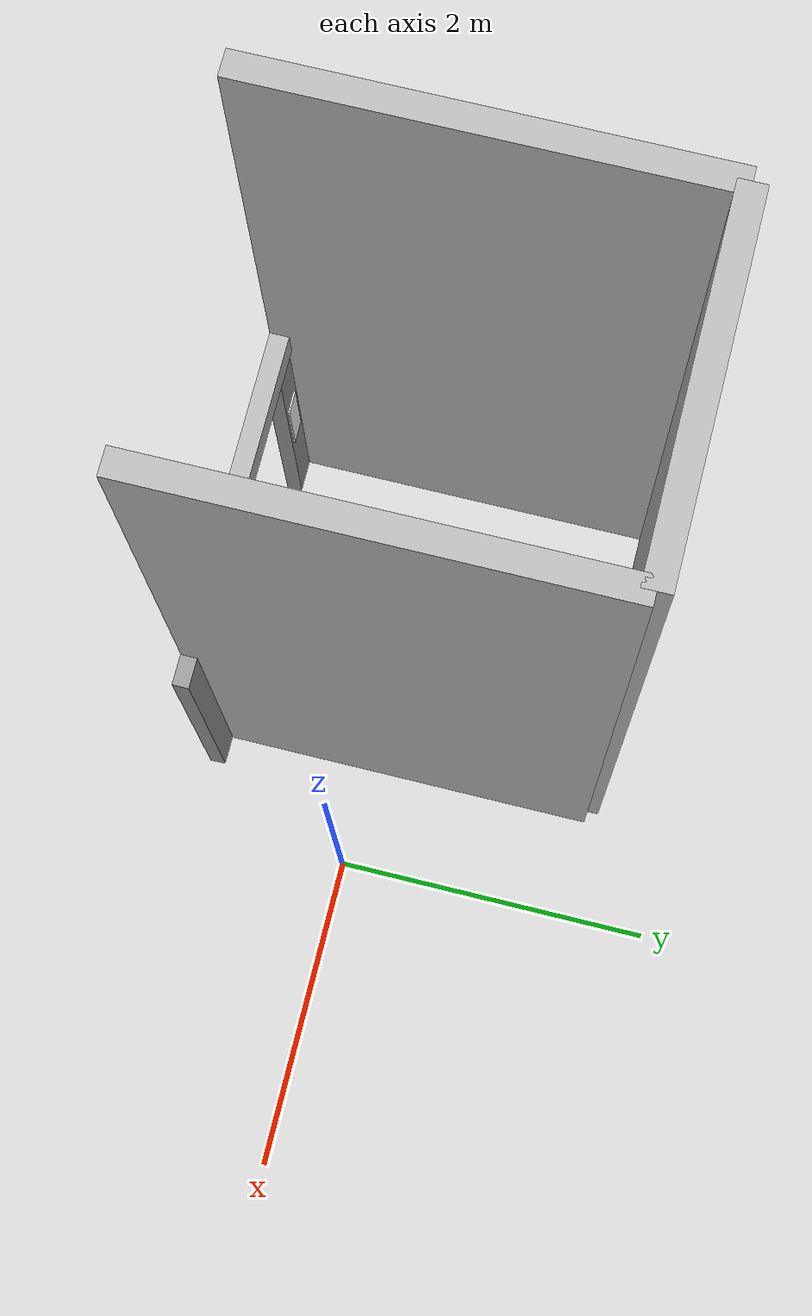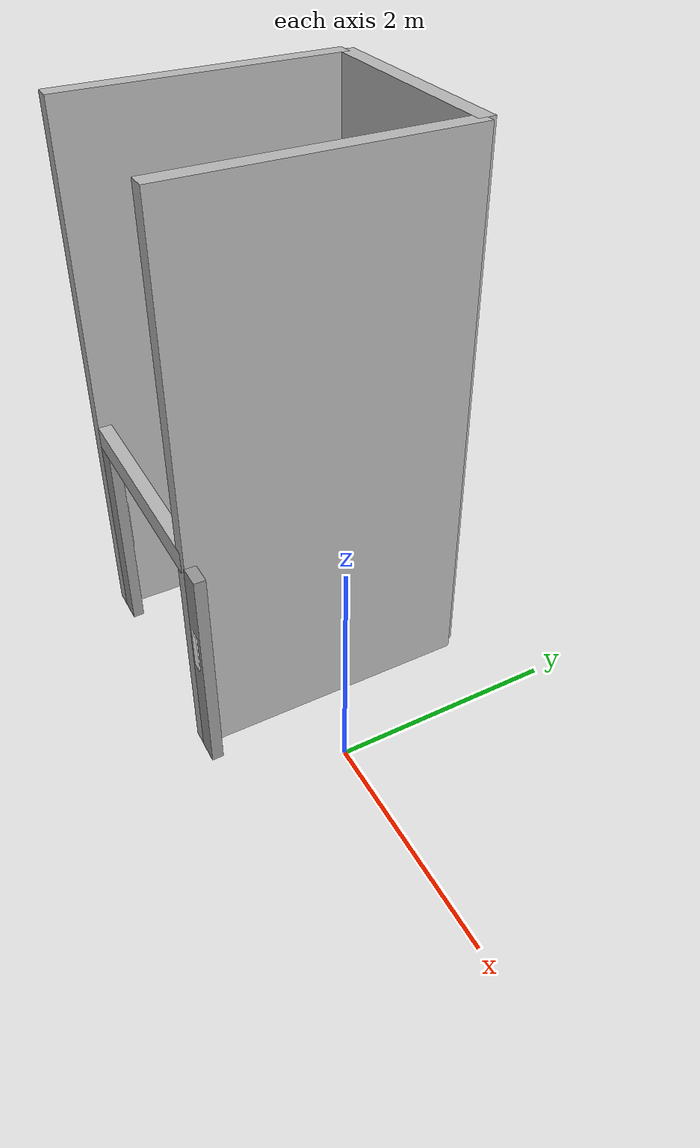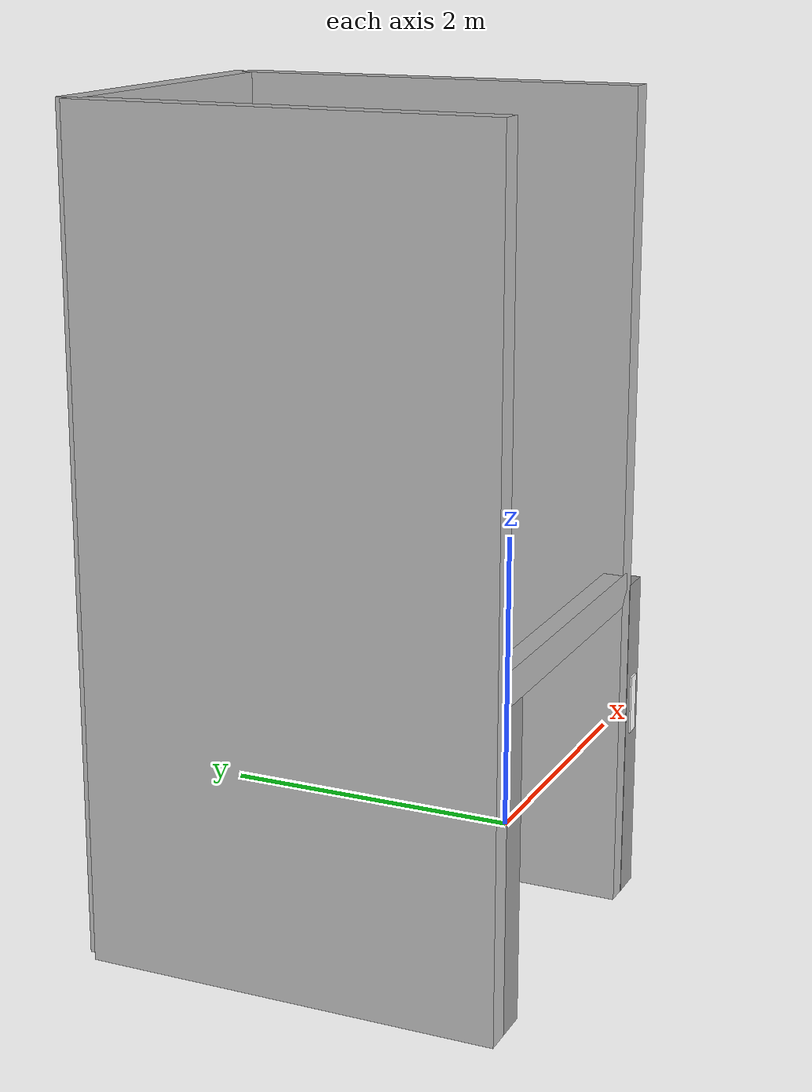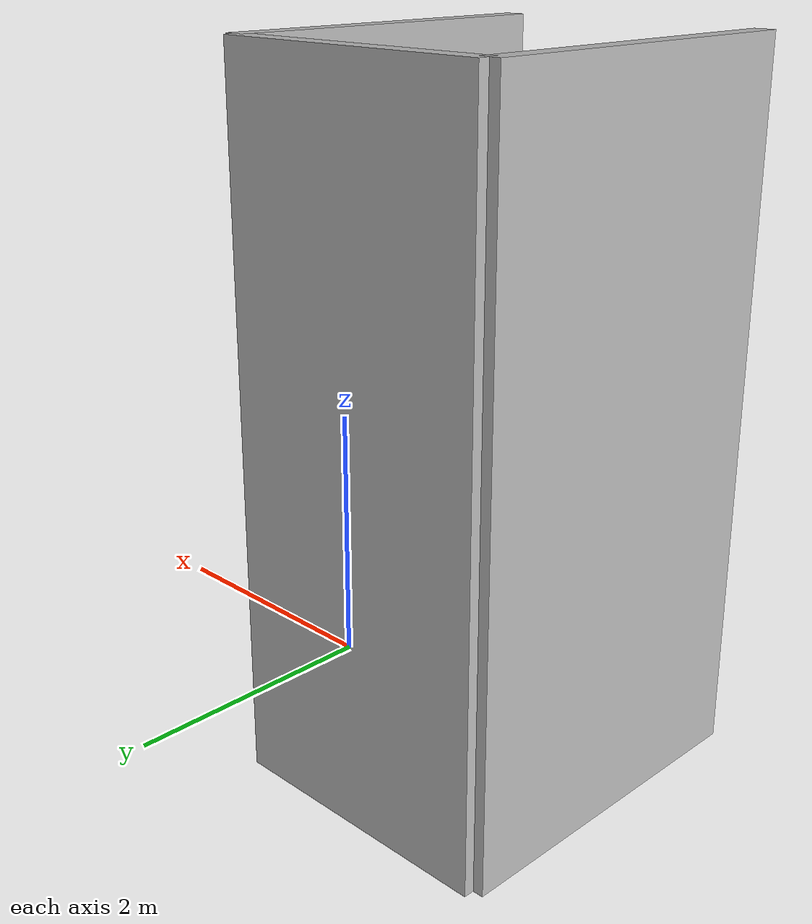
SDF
<?xml version='1.0'?>
<sdf version='1.6'>
  <model name='elevator_shaft'>
    <link name='elevator_shaft'>
      <pose frame=''>-1.72355 0.224232 0 0 0 -1.5708</pose>
      <inertial>
        <mass>1</mass>
        <pose frame=''>0 0 0 0 -0 0</pose>
        <inertia>
          <ixx>1</ixx>
          <ixy>0</ixy>
          <ixz>0</ixz>
          <iyy>1</iyy>
          <iyz>0</iyz>
          <izz>1</izz>
        </inertia>
      </inertial>
      <self_collide>0</self_collide>
      <kinematic>0</kinematic>
      <visual name='shaft_wall3_visual'>
        <pose frame=''>-1.25 0 2.4774 0 -0 0</pose>
        <geometry>
          <box>
            <size>0.15 2 4.95479</size>
          </box>
        </geometry>
        <material>
          <shader type='pixel'>
            <normal_map>__default__</normal_map>
          </shader>
        </material>
        <cast_shadows>1</cast_shadows>
        <transparency>0</transparency>
      </visual>
      <visual name='shaft_wall2_visual'>
        <pose frame=''>0 -1 2.4774 0 -0 0</pose>
        <geometry>
          <box>
            <size>2.5 0.15 4.95479</size>
          </box>
        </geometry>
        <material>
          <shader type='pixel'>
            <normal_map>__default__</normal_map>
          </shader>
        </material>
        <cast_shadows>1</cast_shadows>
        <transparency>0</transparency>
      </visual>
      <visual name='shaft_wall1_visual'>
        <pose frame=''>0 1 2.4774 0 -0 0</pose>
        <geometry>
          <box>
            <size>2.5 0.15 4.95479</size>
          </box>
        </geometry>
        <material>
          <shader type='pixel'>
            <normal_map>__default__</normal_map>
          </shader>
        </material>
        <cast_shadows>1</cast_shadows>
        <transparency>0</transparency>
      </visual>
      <visual name='floor1_visual'>
        <pose frame=''>1.19 0 2 0 -0 0</pose>
        <geometry>
          <box>
            <size>0.12 2 0.2</size>
          </box>
        </geometry>
        <material>
          <shader type='pixel'>
            <normal_map>__default__</normal_map>
          </shader>
        </material>
        <cast_shadows>1</cast_shadows>
        <transparency>0</transparency>
      </visual>
      <collision name='floor1_collision'>
        <laser_retro>0</laser_retro>
        <max_contacts>10</max_contacts>
        <pose frame=''>1.19 0 2 0 -0 0</pose>
        <geometry>
          <box>
            <size>0.12 2 0.2</size>
          </box>
        </geometry>
        <surface>
          <friction>
            <ode>
              <mu>1</mu>
              <mu2>1</mu2>
              <fdir1>0 0 0</fdir1>
              <slip1>0</slip1>
              <slip2>0</slip2>
            </ode>
            <torsional>
              <coefficient>1</coefficient>
              <patch_radius>0</patch_radius>
              <surface_radius>0</surface_radius>
              <use_patch_radius>1</use_patch_radius>
              <ode>
                <slip>0</slip>
              </ode>
            </torsional>
          </friction>
          <bounce>
            <restitution_coefficient>0</restitution_coefficient>
            <threshold>1e+06</threshold>
          </bounce>
          <contact>
            <collide_without_contact>0</collide_without_contact>
            <collide_without_contact_bitmask>1</collide_without_contact_bitmask>
            <collide_bitmask>1</collide_bitmask>
            <ode>
              <soft_cfm>0</soft_cfm>
              <soft_erp>0.2</soft_erp>
              <kp>1e+13</kp>
              <kd>1</kd>
              <max_vel>0.01</max_vel>
              <min_depth>0</min_depth>
            </ode>
            <bullet>
              <split_impulse>1</split_impulse>
              <split_impulse_penetration_threshold>-0.01</split_impulse_penetration_threshold>
              <soft_cfm>0</soft_cfm>
              <soft_erp>0.2</soft_erp>
              <kp>1e+13</kp>
              <kd>1</kd>
            </bullet>
          </contact>
        </surface>
      </collision>
      <collision name='shaft_wall3_collision'>
        <laser_retro>0</laser_retro>
        <max_contacts>10</max_contacts>
        <pose frame=''>-1.25 0 2.4774 0 -0 0</pose>
        <geometry>
          <box>
            <size>0.15 2 4.95479</size>
          </box>
        </geometry>
        <surface>
          <friction>
            <ode>
              <mu>1</mu>
              <mu2>1</mu2>
              <fdir1>0 0 0</fdir1>
              <slip1>0</slip1>
              <slip2>0</slip2>
            </ode>
            <torsional>
              <coefficient>1</coefficient>
              <patch_radius>0</patch_radius>
              <surface_radius>0</surface_radius>
              <use_patch_radius>1</use_patch_radius>
              <ode>
                <slip>0</slip>
              </ode>
            </torsional>
          </friction>
          <bounce>
            <restitution_coefficient>0</restitution_coefficient>
            <threshold>1e+06</threshold>
          </bounce>
          <contact>
            <collide_without_contact>0</collide_without_contact>
            <collide_without_contact_bitmask>1</collide_without_contact_bitmask>
            <collide_bitmask>1</collide_bitmask>
            <ode>
              <soft_cfm>0</soft_cfm>
              <soft_erp>0.2</soft_erp>
              <kp>1e+13</kp>
              <kd>1</kd>
              <max_vel>0.01</max_vel>
              <min_depth>0</min_depth>
            </ode>
            <bullet>
              <split_impulse>1</split_impulse>
              <split_impulse_penetration_threshold>-0.01</split_impulse_penetration_threshold>
              <soft_cfm>0</soft_cfm>
              <soft_erp>0.2</soft_erp>
              <kp>1e+13</kp>
              <kd>1</kd>
            </bullet>
          </contact>
        </surface>
      </collision>
      <collision name='shaft_wall2_collision'>
        <laser_retro>0</laser_retro>
        <max_contacts>10</max_contacts>
        <pose frame=''>0 -1 2.4774 0 -0 0</pose>
        <geometry>
          <box>
            <size>2.5 0.15 4.95479</size>
          </box>
        </geometry>
        <surface>
          <friction>
            <ode>
              <mu>1</mu>
              <mu2>1</mu2>
              <fdir1>0 0 0</fdir1>
              <slip1>0</slip1>
              <slip2>0</slip2>
            </ode>
            <torsional>
              <coefficient>1</coefficient>
              <patch_radius>0</patch_radius>
              <surface_radius>0</surface_radius>
              <use_patch_radius>1</use_patch_radius>
              <ode>
                <slip>0</slip>
              </ode>
            </torsional>
          </friction>
          <bounce>
            <restitution_coefficient>0</restitution_coefficient>
            <threshold>1e+06</threshold>
          </bounce>
          <contact>
            <collide_without_contact>0</collide_without_contact>
            <collide_without_contact_bitmask>1</collide_without_contact_bitmask>
            <collide_bitmask>1</collide_bitmask>
            <ode>
              <soft_cfm>0</soft_cfm>
              <soft_erp>0.2</soft_erp>
              <kp>1e+13</kp>
              <kd>1</kd>
              <max_vel>0.01</max_vel>
              <min_depth>0</min_depth>
            </ode>
            <bullet>
              <split_impulse>1</split_impulse>
              <split_impulse_penetration_threshold>-0.01</split_impulse_penetration_threshold>
              <soft_cfm>0</soft_cfm>
              <soft_erp>0.2</soft_erp>
              <kp>1e+13</kp>
              <kd>1</kd>
            </bullet>
          </contact>
        </surface>
      </collision>
      <collision name='shaft_wall1_collision'>
        <laser_retro>0</laser_retro>
        <max_contacts>10</max_contacts>
        <pose frame=''>0 1 2.4774 0 -0 0</pose>
        <geometry>
          <box>
            <size>2.5 0.15 4.95479</size>
          </box>
        </geometry>
        <surface>
          <friction>
            <ode>
              <mu>1</mu>
              <mu2>1</mu2>
              <fdir1>0 0 0</fdir1>
              <slip1>0</slip1>
              <slip2>0</slip2>
            </ode>
            <torsional>
              <coefficient>1</coefficient>
              <patch_radius>0</patch_radius>
              <surface_radius>0</surface_radius>
              <use_patch_radius>1</use_patch_radius>
              <ode>
                <slip>0</slip>
              </ode>
            </torsional>
          </friction>
          <bounce>
            <restitution_coefficient>0</restitution_coefficient>
            <threshold>1e+06</threshold>
          </bounce>
          <contact>
            <collide_without_contact>0</collide_without_contact>
            <collide_without_contact_bitmask>1</collide_without_contact_bitmask>
            <collide_bitmask>1</collide_bitmask>
            <ode>
              <soft_cfm>0</soft_cfm>
              <soft_erp>0.2</soft_erp>
              <kp>1e+13</kp>
              <kd>1</kd>
              <max_vel>0.01</max_vel>
              <min_depth>0</min_depth>
            </ode>
            <bullet>
              <split_impulse>1</split_impulse>
              <split_impulse_penetration_threshold>-0.01</split_impulse_penetration_threshold>
              <soft_cfm>0</soft_cfm>
              <soft_erp>0.2</soft_erp>
              <kp>1e+13</kp>
              <kd>1</kd>
            </bullet>
          </contact>
        </surface>
      </collision>
    </link>
    <link name='buttons_link'>
      <pose frame=''>-0.5624 -1.03258 1.29659 0 -0 0</pose>
      <inertial>
        <mass>1</mass>
        <inertia>
          <ixx>0.166667</ixx>
          <ixy>0</ixy>
          <ixz>0</ixz>
          <iyy>0.166667</iyy>
          <iyz>0</iyz>
          <izz>0.166667</izz>
        </inertia>
        <pose frame=''>0 0 0 0 -0 0</pose>
      </inertial>
      <self_collide>0</self_collide>
      <kinematic>0</kinematic>
      <gravity>1</gravity>
      <visual name='visual'>
        <pose frame=''>0 0 -0.08 0 -0 0</pose>
        <geometry>
          <box>
            <size>0.09 0.01 0.36</size>
          </box>
        </geometry>
        <material>
          <script>
            <uri>model://elevator_shaft/materials/scripts</uri>
            <uri>model://elevator_shaft/materials/textures</uri>
            <name>Up_down/Diffuse</name>
          </script>
          <shader type='pixel'>
            <normal_map>__default__</normal_map>
          </shader>
          <ambient>1 1 1 1</ambient>
          <diffuse>1 1 1 1</diffuse>
          <specular>0 0 0 1</specular>
          <emissive>0 0 0 1</emissive>
        </material>
        <transparency>0</transparency>
        <cast_shadows>1</cast_shadows>
      </visual>
      <collision name='collision'>
        <laser_retro>0</laser_retro>
        <max_contacts>10</max_contacts>
        <pose frame=''>0 0 -0.08 0 -0 0</pose>
        <geometry>
          <box>
            <size>0.09 0.01 0.36</size>
          </box>
        </geometry>
        <surface>
          <friction>
            <ode>
              <mu>1</mu>
              <mu2>1</mu2>
              <fdir1>0 0 0</fdir1>
              <slip1>0</slip1>
              <slip2>0</slip2>
            </ode>
            <torsional>
              <coefficient>1</coefficient>
              <patch_radius>0</patch_radius>
              <surface_radius>0</surface_radius>
              <use_patch_radius>1</use_patch_radius>
              <ode>
                <slip>0</slip>
              </ode>
            </torsional>
          </friction>
          <bounce>
            <restitution_coefficient>0</restitution_coefficient>
            <threshold>1e+06</threshold>
          </bounce>
          <contact>
            <collide_without_contact>0</collide_without_contact>
            <collide_without_contact_bitmask>1</collide_without_contact_bitmask>
            <collide_bitmask>1</collide_bitmask>
            <ode>
              <soft_cfm>0</soft_cfm>
              <soft_erp>0.2</soft_erp>
              <kp>1e+13</kp>
              <kd>1</kd>
              <max_vel>0.01</max_vel>
              <min_depth>0</min_depth>
            </ode>
            <bullet>
              <split_impulse>1</split_impulse>
              <split_impulse_penetration_threshold>-0.01</split_impulse_penetration_threshold>
              <soft_cfm>0</soft_cfm>
              <soft_erp>0.2</soft_erp>
              <kp>1e+13</kp>
              <kd>1</kd>
            </bullet>
          </contact>
        </surface>
      </collision>
    </link>
    <link name='buttons_panel'>
      <pose frame=''>-2.536 -0.918894 1.1 0 -0 1.59011</pose>
      <inertial>
        <mass>1</mass>
        <inertia>
          <ixx>0.166667</ixx>
          <ixy>0</ixy>
          <ixz>0</ixz>
          <iyy>0.166667</iyy>
          <iyz>0</iyz>
          <izz>0.166667</izz>
        </inertia>
        <pose frame=''>0 0 0 0 -0 1.57</pose>
      </inertial>
      <self_collide>0</self_collide>
      <kinematic>0</kinematic>
      <gravity>1</gravity>
      <visual name='visual'>
        <pose frame=''>0 0 0 0 -0 1.57</pose>
        <geometry>
          <box>
            <size>0.15 0.01 0.5</size>
          </box>
        </geometry>
        <material>
          <script>
            <uri>model://elevator_shaft/materials/scripts</uri>
            <uri>model://elevator_shaft/materials/textures</uri>
            <name>Buttons_panel/Picture</name>
          </script>
          <shader type='pixel'>
            <normal_map>__default__</normal_map>
          </shader>
          <ambient>1 1 1 1</ambient>
          <diffuse>1 1 1 1</diffuse>
          <specular>0 0 0 1</specular>
          <emissive>0 0 0 1</emissive>
        </material>
        <transparency>0</transparency>
        <cast_shadows>1</cast_shadows>
      </visual>
      <collision name='collision'>
        <laser_retro>0</laser_retro>
        <max_contacts>10</max_contacts>
        <pose frame=''>0 0 0 0 -0 1.57</pose>
        <geometry>
          <box>
            <size>0.15 0.01 0.5</size>
          </box>
        </geometry>
        <surface>
          <friction>
            <ode>
              <mu>1</mu>
              <mu2>1</mu2>
              <fdir1>0 0 0</fdir1>
              <slip1>0</slip1>
              <slip2>0</slip2>
            </ode>
            <torsional>
              <coefficient>1</coefficient>
              <patch_radius>0</patch_radius>
              <surface_radius>0</surface_radius>
              <use_patch_radius>1</use_patch_radius>
              <ode>
                <slip>0</slip>
              </ode>
            </torsional>
          </friction>
          <bounce>
            <restitution_coefficient>0</restitution_coefficient>
            <threshold>1e+06</threshold>
          </bounce>
          <contact>
            <collide_without_contact>0</collide_without_contact>
            <collide_without_contact_bitmask>1</collide_without_contact_bitmask>
            <collide_bitmask>1</collide_bitmask>
            <ode>
              <soft_cfm>0</soft_cfm>
              <soft_erp>0.2</soft_erp>
              <kp>1e+13</kp>
              <kd>1</kd>
              <max_vel>0.01</max_vel>
              <min_depth>0</min_depth>
            </ode>
            <bullet>
              <split_impulse>1</split_impulse>
              <split_impulse_penetration_threshold>-0.01</split_impulse_penetration_threshold>
              <soft_cfm>0</soft_cfm>
              <soft_erp>0.2</soft_erp>
              <kp>1e+13</kp>
              <kd>1</kd>
            </bullet>
          </contact>
        </surface>
      </collision>
    </link>
    <link name='link_0'>
      <pose frame=''>-0.562882 -0.977907 1.0001 0 -0 0</pose>
      <inertial>
        <mass>1</mass>
        <inertia>
          <ixx>0.166667</ixx>
          <ixy>0</ixy>
          <ixz>0</ixz>
          <iyy>0.166667</iyy>
          <iyz>0</iyz>
          <izz>0.166667</izz>
        </inertia>
        <pose frame=''>0 0 0 0 -0 0</pose>
      </inertial>
      <self_collide>0</self_collide>
      <kinematic>0</kinematic>
      <visual name='visual'>
        <pose frame=''>0 0 0 0 -0 0</pose>
        <geometry>
          <box>
            <size>0.2 0.1 2</size>
          </box>
        </geometry>
        <material>
          <lighting>1</lighting>
          <script>
            <uri>file://media/materials/scripts/gazebo.material</uri>
            <name>Gazebo/Grey</name>
          </script>
          <shader type='pixel'>
            <normal_map>__default__</normal_map>
          </shader>
          <ambient>0.3 0.3 0.3 1</ambient>
          <diffuse>0.7 0.7 0.7 1</diffuse>
          <specular>0.01 0.01 0.01 1</specular>
          <emissive>0 0 0 1</emissive>
        </material>
        <transparency>0</transparency>
        <cast_shadows>1</cast_shadows>
      </visual>
      <collision name='collision'>
        <laser_retro>0</laser_retro>
        <max_contacts>10</max_contacts>
        <pose frame=''>0 0 0 0 -0 0</pose>
        <geometry>
          <box>
            <size>0.2 0.1 2</size>
          </box>
        </geometry>
        <surface>
          <friction>
            <ode>
              <mu>1</mu>
              <mu2>1</mu2>
              <fdir1>0 0 0</fdir1>
              <slip1>0</slip1>
              <slip2>0</slip2>
            </ode>
            <torsional>
              <coefficient>1</coefficient>
              <patch_radius>0</patch_radius>
              <surface_radius>0</surface_radius>
              <use_patch_radius>1</use_patch_radius>
              <ode>
                <slip>0</slip>
              </ode>
            </torsional>
          </friction>
          <bounce>
            <restitution_coefficient>0</restitution_coefficient>
            <threshold>1e+06</threshold>
          </bounce>
          <contact>
            <collide_without_contact>0</collide_without_contact>
            <collide_without_contact_bitmask>1</collide_without_contact_bitmask>
            <collide_bitmask>1</collide_bitmask>
            <ode>
              <soft_cfm>0</soft_cfm>
              <soft_erp>0.2</soft_erp>
              <kp>1e+13</kp>
              <kd>1</kd>
              <max_vel>0.01</max_vel>
              <min_depth>0</min_depth>
            </ode>
            <bullet>
              <split_impulse>1</split_impulse>
              <split_impulse_penetration_threshold>-0.01</split_impulse_penetration_threshold>
              <soft_cfm>0</soft_cfm>
              <soft_erp>0.2</soft_erp>
              <kp>1e+13</kp>
              <kd>1</kd>
            </bullet>
          </contact>
        </surface>
      </collision>
    </link>
    <link name='link_0_clone'>
      <pose frame=''>-2.54905 -0.975314 1.0001 0 0 -3.13859</pose>
      <inertial>
        <mass>1</mass>
        <inertia>
          <ixx>0.166667</ixx>
          <ixy>0</ixy>
          <ixz>0</ixz>
          <iyy>0.166667</iyy>
          <iyz>0</iyz>
          <izz>0.166667</izz>
        </inertia>
        <pose frame=''>0 0 0 0 -0 0</pose>
      </inertial>
      <self_collide>0</self_collide>
      <kinematic>0</kinematic>
      <visual name='visual'>
        <pose frame=''>0 0 0 0 -0 0</pose>
        <geometry>
          <box>
            <size>0.22 0.1 2</size>
          </box>
        </geometry>
        <material>
          <lighting>1</lighting>
          <script>
            <uri>file://media/materials/scripts/gazebo.material</uri>
            <name>Gazebo/Grey</name>
          </script>
          <shader type='pixel'>
            <normal_map>__default__</normal_map>
          </shader>
          <ambient>0.3 0.3 0.3 1</ambient>
          <diffuse>0.7 0.7 0.7 1</diffuse>
          <specular>0.01 0.01 0.01 1</specular>
          <emissive>0 0 0 1</emissive>
        </material>
        <transparency>0</transparency>
        <cast_shadows>1</cast_shadows>
      </visual>
      <collision name='collision'>
        <laser_retro>0</laser_retro>
        <max_contacts>10</max_contacts>
        <pose frame=''>0 0 0 0 -0 0</pose>
        <geometry>
          <box>
            <size>0.22 0.1 2</size>
          </box>
        </geometry>
        <surface>
          <friction>
            <ode>
              <mu>1</mu>
              <mu2>1</mu2>
              <fdir1>0 0 0</fdir1>
              <slip1>0</slip1>
              <slip2>0</slip2>
            </ode>
            <torsional>
              <coefficient>1</coefficient>
              <patch_radius>0</patch_radius>
              <surface_radius>0</surface_radius>
              <use_patch_radius>1</use_patch_radius>
              <ode>
                <slip>0</slip>
              </ode>
            </torsional>
          </friction>
          <bounce>
            <restitution_coefficient>0</restitution_coefficient>
            <threshold>1e+06</threshold>
          </bounce>
          <contact>
            <collide_without_contact>0</collide_without_contact>
            <collide_without_contact_bitmask>1</collide_without_contact_bitmask>
            <collide_bitmask>1</collide_bitmask>
            <ode>
              <soft_cfm>0</soft_cfm>
              <soft_erp>0.2</soft_erp>
              <kp>1e+13</kp>
              <kd>1</kd>
              <max_vel>0.01</max_vel>
              <min_depth>0</min_depth>
            </ode>
            <bullet>
              <split_impulse>1</split_impulse>
              <split_impulse_penetration_threshold>-0.01</split_impulse_penetration_threshold>
              <soft_cfm>0</soft_cfm>
              <soft_erp>0.2</soft_erp>
              <kp>1e+13</kp>
              <kd>1</kd>
            </bullet>
          </contact>
        </surface>
      </collision>
    </link>
    <static>1</static>
    <allow_auto_disable>1</allow_auto_disable>
  </model>
</sdf>
